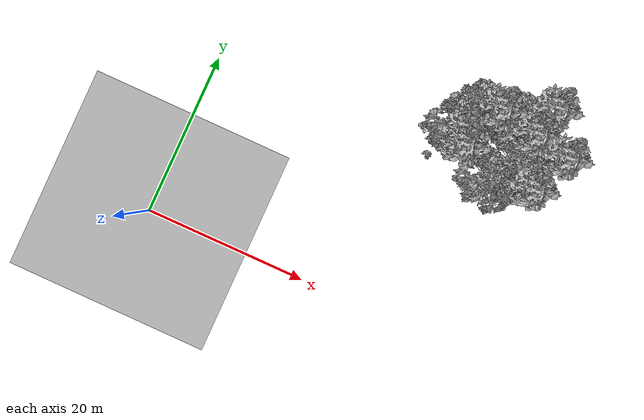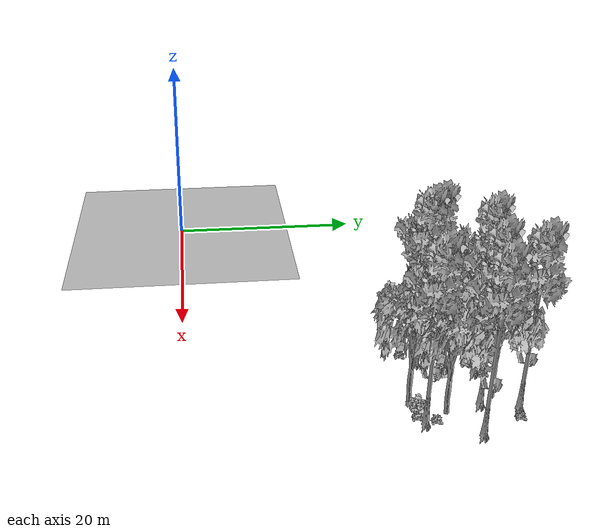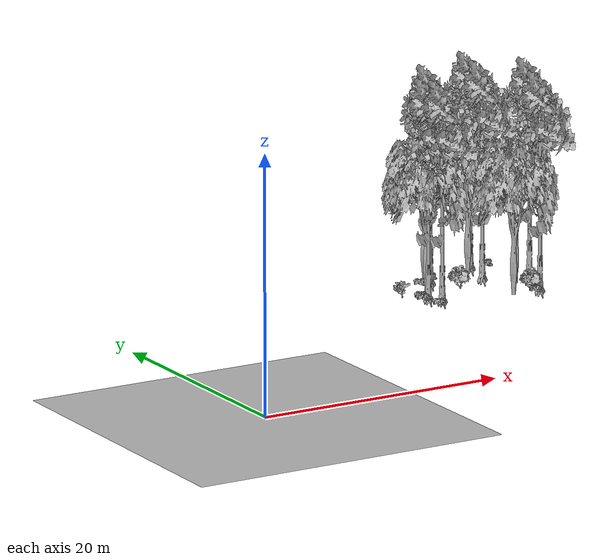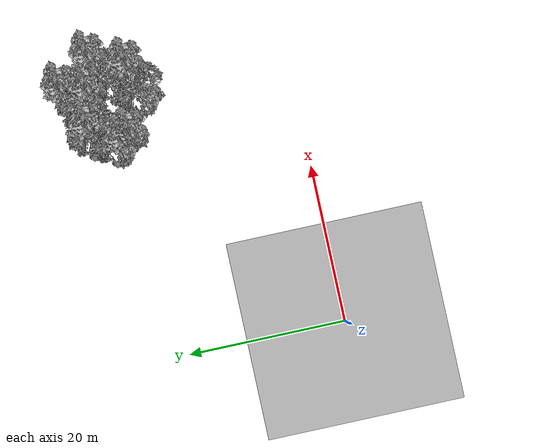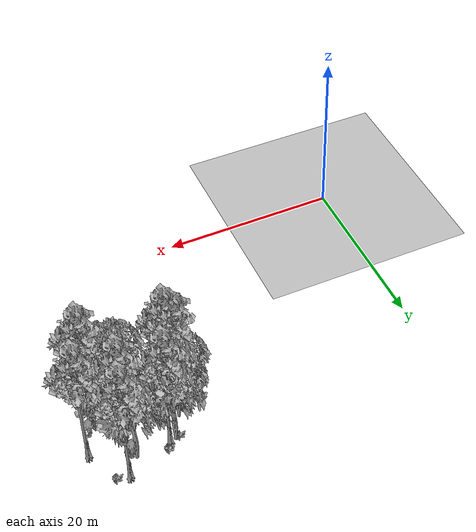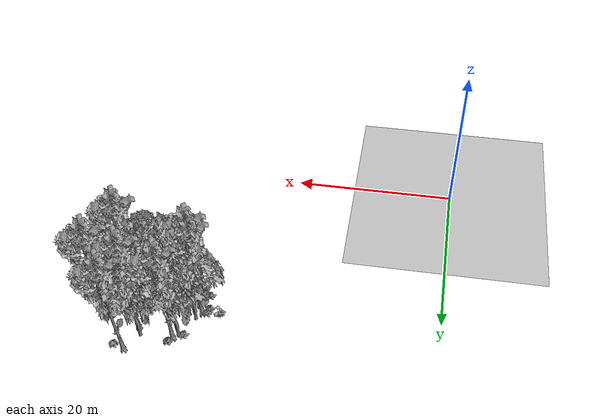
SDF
<sdf version="1.7">
 <world name="default">
  <model name="ground_plane">
   <static>1</static>
   <link name="link">
    <collision name="collision">
     <pose>-50 0 0 0 -0 0</pose>
     <geometry><plane><normal>0 0 1</normal><size>80 80</size></plane></geometry>
     <surface><contact><ode><min_depth>0.01</min_depth><max_vel>0</max_vel></ode></contact></surface>
    </collision>
    <visual name="grass">
     <cast_shadows>0</cast_shadows>
     <geometry>
      <mesh>
       <scale>0.46714285714285714 0.46714285714285714 0.1</scale>
       <uri>file://grass_plane/meshes/grass_plane.dae</uri>
      </mesh>
     </geometry>
    </visual>
   </link>
  </model>
  <model name="Tree 29">
   <static>1</static>
   <pose>27.831478742565906 22.209729060061214 0 1.57079 -0 0</pose>
   <link name="link">
    <collision name="collision">
     <geometry><mesh><scale>3.5 5 3.5</scale><uri>model://tree_9/meshes/tree_9.obj</uri></mesh></geometry>
    </collision>
    <visual name="visual">
     <geometry><mesh><scale>3.5 5 3.5</scale><uri>model://tree_9/meshes/tree_9.obj</uri></mesh></geometry>
    </visual>
   </link>
  </model>
  <model name="Tree 70">
   <static>1</static>
   <pose>29.569764331210493 25.75437504963061 0 1.57079 -0 0</pose>
   <link name="link">
    <collision name="collision">
     <geometry><mesh><scale>3.5 5 3.5</scale><uri>model://tree_2/meshes/tree_2.obj</uri></mesh></geometry>
    </collision>
    <visual name="visual">
     <geometry><mesh><scale>3.5 5 3.5</scale><uri>model://tree_2/meshes/tree_2.obj</uri></mesh></geometry>
    </visual>
   </link>
  </model>
  <model name="Tree 115">
   <static>1</static>
   <pose>30.336259620576342 25.97188452196204 0 1.57079 -0 0</pose>
   <link name="link">
    <collision name="collision">
     <geometry><mesh><scale>3.5 5 3.5</scale><uri>model://tree_9/meshes/tree_9.obj</uri></mesh></geometry>
    </collision>
    <visual name="visual">
     <geometry><mesh><scale>3.5 5 3.5</scale><uri>model://tree_9/meshes/tree_9.obj</uri></mesh></geometry>
    </visual>
   </link>
  </model>
  <model name="Tree 149">
   <static>1</static>
   <pose>36.68422760423887 19.821847353935738 0 1.57079 -0 0</pose>
   <link name="link">
    <collision name="collision">
     <geometry><mesh><scale>3.5 5 3.5</scale><uri>model://tree_9/meshes/tree_9.obj</uri></mesh></geometry>
    </collision>
    <visual name="visual">
     <geometry><mesh><scale>3.5 5 3.5</scale><uri>model://tree_9/meshes/tree_9.obj</uri></mesh></geometry>
    </visual>
   </link>
  </model>
  <model name="Tree 242">
   <static>1</static>
   <pose>35.594111776671284 21.821614448853516 0 1.57079 -0 0</pose>
   <link name="link">
    <collision name="collision">
     <geometry><mesh><scale>3.5 5 3.5</scale><uri>model://tree_2/meshes/tree_2.obj</uri></mesh></geometry>
    </collision>
    <visual name="visual">
     <geometry><mesh><scale>3.5 5 3.5</scale><uri>model://tree_2/meshes/tree_2.obj</uri></mesh></geometry>
    </visual>
   </link>
  </model>
  <model name="Tree 260">
   <static>1</static>
   <pose>38.46035530930568 24.134706823666406 0 1.57079 -0 0</pose>
   <link name="link">
    <collision name="collision">
     <geometry><mesh><scale>3.5 5 3.5</scale><uri>model://tree_9/meshes/tree_9.obj</uri></mesh></geometry>
    </collision>
    <visual name="visual">
     <geometry><mesh><scale>3.5 5 3.5</scale><uri>model://tree_9/meshes/tree_9.obj</uri></mesh></geometry>
    </visual>
   </link>
  </model>
  <model name="Tree 306">
   <static>1</static>
   <pose>28.212385887246143 23.207664927217692 0 1.57079 -0 0</pose>
   <link name="link">
    <collision name="collision">
     <geometry><mesh><scale>3.5 5 3.5</scale><uri>model://tree_2/meshes/tree_2.obj</uri></mesh></geometry>
    </collision>
    <visual name="visual">
     <geometry><mesh><scale>3.5 5 3.5</scale><uri>model://tree_2/meshes/tree_2.obj</uri></mesh></geometry>
    </visual>
   </link>
  </model>
  <model name="Tree 315">
   <static>1</static>
   <pose>34.634100835095325 25.092132913733096 0 1.57079 -0 0</pose>
   <link name="link">
    <collision name="collision">
     <geometry><mesh><scale>3.5 5 3.5</scale><uri>model://tree_9/meshes/tree_9.obj</uri></mesh></geometry>
    </collision>
    <visual name="visual">
     <geometry><mesh><scale>3.5 5 3.5</scale><uri>model://tree_9/meshes/tree_9.obj</uri></mesh></geometry>
    </visual>
   </link>
  </model>
  <model name="Tree 382">
   <static>1</static>
   <pose>33.70956634260166 19.11701928909367 0 1.57079 -0 0</pose>
   <link name="link">
    <collision name="collision">
     <geometry><mesh><scale>3.5 5 3.5</scale><uri>model://tree_2/meshes/tree_2.obj</uri></mesh></geometry>
    </collision>
    <visual name="visual">
     <geometry><mesh><scale>3.5 5 3.5</scale><uri>model://tree_2/meshes/tree_2.obj</uri></mesh></geometry>
    </visual>
   </link>
  </model>
  <model name="Tree 512">
   <static>1</static>
   <pose>28.432965962321845 21.13231353536353 0 1.57079 -0 0</pose>
   <link name="link">
    <collision name="collision">
     <geometry><mesh><scale>3.5 5 3.5</scale><uri>model://tree_9/meshes/tree_9.obj</uri></mesh></geometry>
    </collision>
    <visual name="visual">
     <geometry><mesh><scale>3.5 5 3.5</scale><uri>model://tree_9/meshes/tree_9.obj</uri></mesh></geometry>
    </visual>
   </link>
  </model>
  <model name="Tree 540">
   <static>1</static>
   <pose>35.4652680841139 28.210623502445543 0 1.57079 -0 0</pose>
   <link name="link">
    <collision name="collision">
     <geometry><mesh><scale>3.5 5 3.5</scale><uri>model://tree_9/meshes/tree_9.obj</uri></mesh></geometry>
    </collision>
    <visual name="visual">
     <geometry><mesh><scale>3.5 5 3.5</scale><uri>model://tree_9/meshes/tree_9.obj</uri></mesh></geometry>
    </visual>
   </link>
  </model>
  <model name="Tree 566">
   <static>1</static>
   <pose>33.9385964657576 26.25506328466527 0 1.57079 -0 0</pose>
   <link name="link">
    <collision name="collision">
     <geometry><mesh><scale>3.5 5 3.5</scale><uri>model://tree_2/meshes/tree_2.obj</uri></mesh></geometry>
    </collision>
    <visual name="visual">
     <geometry><mesh><scale>3.5 5 3.5</scale><uri>model://tree_2/meshes/tree_2.obj</uri></mesh></geometry>
    </visual>
   </link>
  </model>
  <model name="Bush 68">
   <static>1</static>
   <pose>25.653845115408046 22.64198825749459 0 1.57079 -0 0</pose>
   <link name="link">
    <collision name="collision">
     <geometry><mesh><scale>2 2 2</scale><uri>model://bush_0/meshes/bush_0.obj</uri></mesh></geometry>
     <surface><contact><collide_without_contact>false</collide_without_contact></contact></surface>
    </collision>
    <visual name="visual">
     <geometry><mesh><scale>2 2 2</scale><uri>model://bush_0/meshes/bush_0.obj</uri></mesh></geometry>
    </visual>
   </link>
  </model>
  <model name="Bush 127">
   <static>1</static>
   <pose>30.694659925281073 26.62910783023341 0 1.57079 -0 0</pose>
   <link name="link">
    <collision name="collision">
     <geometry><mesh><scale>2 2 2</scale><uri>model://bush_2/meshes/bush_2.obj</uri></mesh></geometry>
     <surface><contact><collide_without_contact>false</collide_without_contact></contact></surface>
    </collision>
    <visual name="visual">
     <geometry><mesh><scale>2 2 2</scale><uri>model://bush_2/meshes/bush_2.obj</uri></mesh></geometry>
    </visual>
   </link>
  </model>
  <model name="Bush 163">
   <static>1</static>
   <pose>27.36778855903603 19.837258922147342 0 1.57079 -0 0</pose>
   <link name="link">
    <collision name="collision">
     <geometry><mesh><scale>2 2 2</scale><uri>model://bush_2/meshes/bush_2.obj</uri></mesh></geometry>
     <surface><contact><collide_without_contact>false</collide_without_contact></contact></surface>
    </collision>
    <visual name="visual">
     <geometry><mesh><scale>2 2 2</scale><uri>model://bush_2/meshes/bush_2.obj</uri></mesh></geometry>
    </visual>
   </link>
  </model>
  <model name="Bush 169">
   <static>1</static>
   <pose>36.68257387488758 27.82286853580713 0 1.57079 -0 0</pose>
   <link name="link">
    <collision name="collision">
     <geometry><mesh><scale>2 2 2</scale><uri>model://bush_2/meshes/bush_2.obj</uri></mesh></geometry>
     <surface><contact><collide_without_contact>false</collide_without_contact></contact></surface>
    </collision>
    <visual name="visual">
     <geometry><mesh><scale>2 2 2</scale><uri>model://bush_2/meshes/bush_2.obj</uri></mesh></geometry>
    </visual>
   </link>
  </model>
  <model name="Bush 223">
   <static>1</static>
   <pose>27.00171743284905 21.642910929877615 0 1.57079 -0 0</pose>
   <link name="link">
    <collision name="collision">
     <geometry><mesh><scale>2 2 2</scale><uri>model://bush_2/meshes/bush_2.obj</uri></mesh></geometry>
     <surface><contact><collide_without_contact>false</collide_without_contact></contact></surface>
    </collision>
    <visual name="visual">
     <geometry><mesh><scale>2 2 2</scale><uri>model://bush_2/meshes/bush_2.obj</uri></mesh></geometry>
    </visual>
   </link>
  </model>
  <model name="Bush 268">
   <static>1</static>
   <pose>35.94987320078336 19.299982660431127 0 1.57079 -0 0</pose>
   <link name="link">
    <collision name="collision">
     <geometry><mesh><scale>2 2 2</scale><uri>model://bush_2/meshes/bush_2.obj</uri></mesh></geometry>
     <surface><contact><collide_without_contact>false</collide_without_contact></contact></surface>
    </collision>
    <visual name="visual">
     <geometry><mesh><scale>2 2 2</scale><uri>model://bush_2/meshes/bush_2.obj</uri></mesh></geometry>
    </visual>
   </link>
  </model>
  <model name="Bush 376">
   <static>1</static>
   <pose>27.187818341877886 22.28867760732517 0 1.57079 -0 0</pose>
   <link name="link">
    <collision name="collision">
     <geometry><mesh><scale>2 2 2</scale><uri>model://bush_2/meshes/bush_2.obj</uri></mesh></geometry>
     <surface><contact><collide_without_contact>false</collide_without_contact></contact></surface>
    </collision>
    <visual name="visual">
     <geometry><mesh><scale>2 2 2</scale><uri>model://bush_2/meshes/bush_2.obj</uri></mesh></geometry>
    </visual>
   </link>
  </model>
  <model name="Bush 377">
   <static>1</static>
   <pose>31.06265766775674 22.645097236861062 0 1.57079 -0 0</pose>
   <link name="link">
    <collision name="collision">
     <geometry><mesh><scale>2 2 2</scale><uri>model://bush_1/meshes/bush_1.obj</uri></mesh></geometry>
     <surface><contact><collide_without_contact>false</collide_without_contact></contact></surface>
    </collision>
    <visual name="visual">
     <geometry><mesh><scale>2 2 2</scale><uri>model://bush_1/meshes/bush_1.obj</uri></mesh></geometry>
    </visual>
   </link>
  </model>
  <model name="Bush 391">
   <static>1</static>
   <pose>29.12638517029886 25.55180155587864 0 1.57079 -0 0</pose>
   <link name="link">
    <collision name="collision">
     <geometry><mesh><scale>2 2 2</scale><uri>model://bush_2/meshes/bush_2.obj</uri></mesh></geometry>
     <surface><contact><collide_without_contact>false</collide_without_contact></contact></surface>
    </collision>
    <visual name="visual">
     <geometry><mesh><scale>2 2 2</scale><uri>model://bush_2/meshes/bush_2.obj</uri></mesh></geometry>
    </visual>
   </link>
  </model>
  <model name="Bush 431">
   <static>1</static>
   <pose>36.51583559033685 20.770344896048883 0 1.57079 -0 0</pose>
   <link name="link">
    <collision name="collision">
     <geometry><mesh><scale>2 2 2</scale><uri>model://bush_2/meshes/bush_2.obj</uri></mesh></geometry>
     <surface><contact><collide_without_contact>false</collide_without_contact></contact></surface>
    </collision>
    <visual name="visual">
     <geometry><mesh><scale>2 2 2</scale><uri>model://bush_2/meshes/bush_2.obj</uri></mesh></geometry>
    </visual>
   </link>
  </model>
  <model name="Bush 438">
   <static>1</static>
   <pose>35.54368896153174 19.171846895685213 0 1.57079 -0 0</pose>
   <link name="link">
    <collision name="collision">
     <geometry><mesh><scale>2 2 2</scale><uri>model://bush_1/meshes/bush_1.obj</uri></mesh></geometry>
     <surface><contact><collide_without_contact>false</collide_without_contact></contact></surface>
    </collision>
    <visual name="visual">
     <geometry><mesh><scale>2 2 2</scale><uri>model://bush_1/meshes/bush_1.obj</uri></mesh></geometry>
    </visual>
   </link>
  </model>
 </world>
</sdf>
